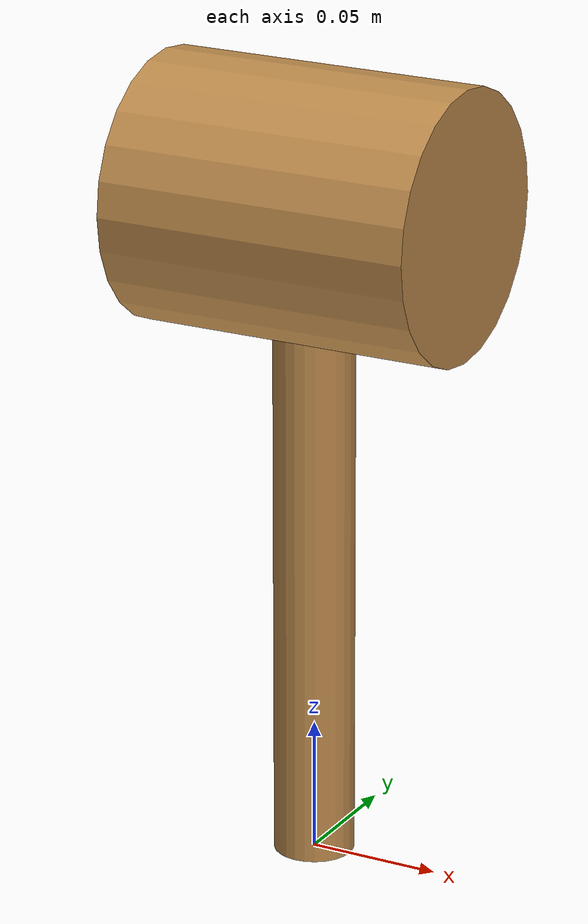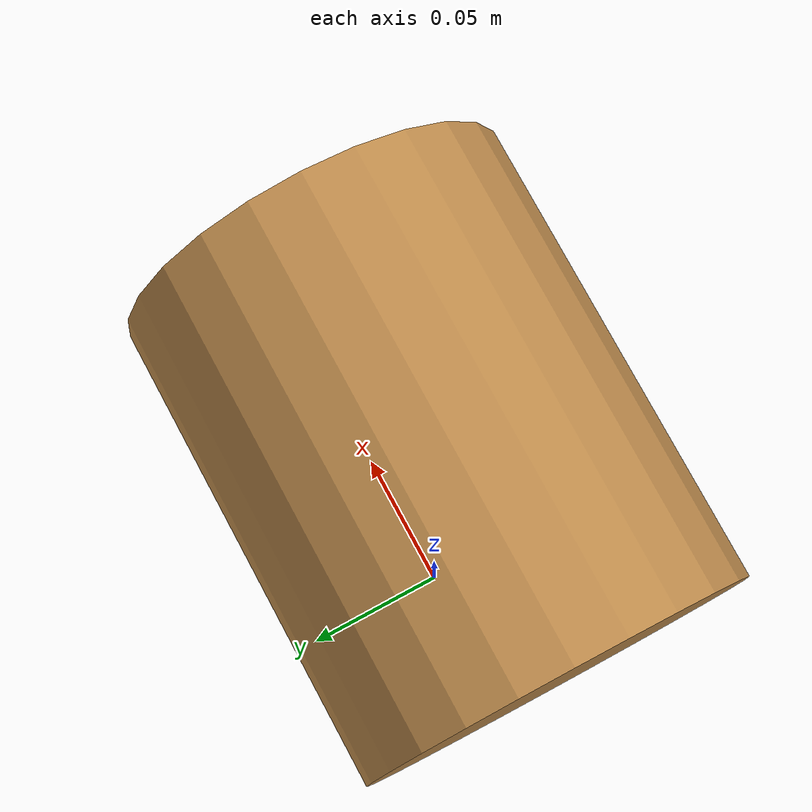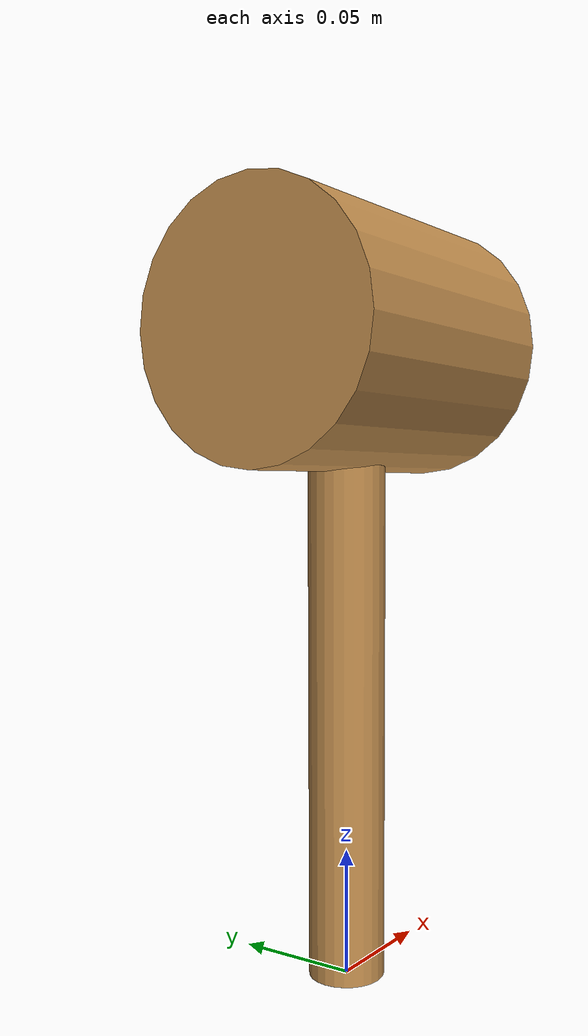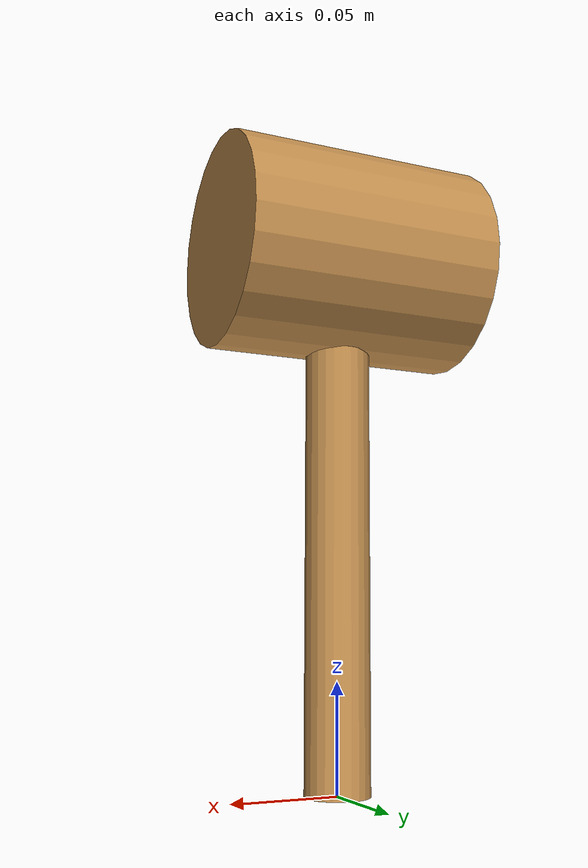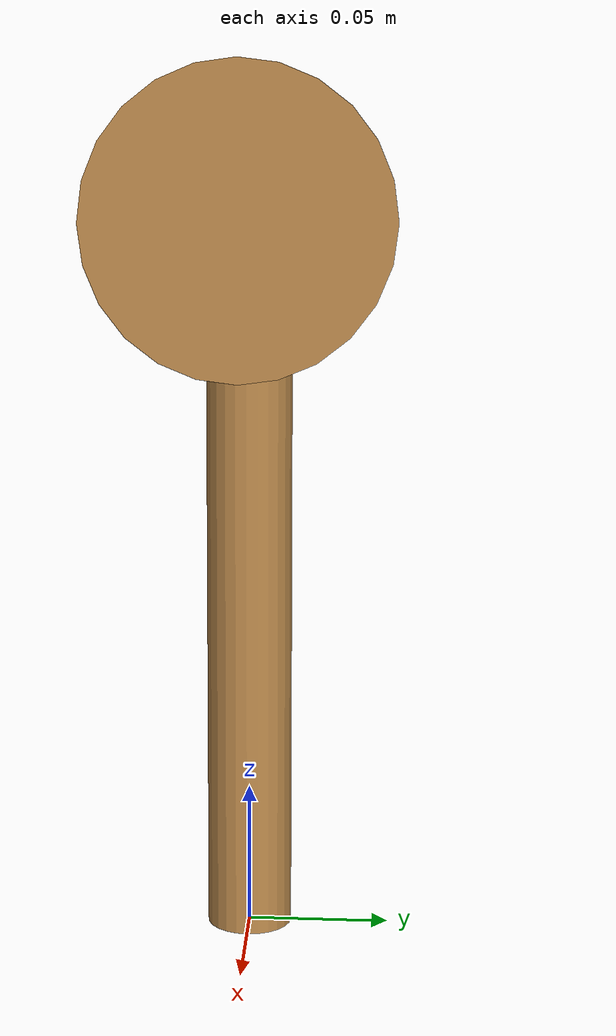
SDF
<?xml version="1.0"?>
<sdf version="1.7">
  <model name="hammer">
    <static>false</static>

    <link name="hammer_link">
        <!-- Rough inertial properties (good enough for simulation) -->
        <inertial>
            <mass>1.0</mass>
            <inertia>
                <ixx>0.01</ixx>
                <iyy>0.01</iyy>
                <izz>0.01</izz>
                <ixy>0.0</ixy>
                <ixz>0.0</ixz>
                <iyz>0.0</iyz>
            </inertia>
        </inertial>

        <!-- Handle: long thin cylinder, centered along +z -->
        <visual name="handle_visual">
            <pose>0 0 0.125 0 0 0</pose>
            <geometry>
            <cylinder>
                <radius>0.015</radius>
                <length>0.25</length>
            </cylinder>
            </geometry>
            <material>
            <ambient>0.75 0.55 0.3 1</ambient>
            <diffuse>0.75 0.55 0.3 1</diffuse>
            </material>
        </visual>

        <collision name="handle_collision">
            <pose>0 0 0.125 0 0 0</pose>
            <geometry>
            <cylinder>
                <radius>0.01</radius>
                <length>0.25</length>
            </cylinder>
            </geometry>
        </collision>

        <!-- Head: short, fat cylinder at the top of the handle -->
        <visual name="head_visual">
            <pose>0 0 0.25 0 1.5708 0</pose>
            <geometry>
            <cylinder>
                <radius>0.05</radius>
                <length>0.12</length>
            </cylinder>
            </geometry>
            <material>
            <ambient>0.75 0.55 0.3 1</ambient>
            <diffuse>0.75 0.55 0.3 1</diffuse>
            </material>
        </visual>

        <collision name="head_collision">
            <pose>0 0 0.25 0 1.5708 0</pose>
            <geometry>
            <cylinder>
                <radius>0.05</radius>
                <length>0.12</length>
            </cylinder>
            </geometry>
        </collision>
    </link>
    <!-- frame for hammer head (center of head) -->
    <frame name="hammer_head" attached_to="hammer_link">
        <pose>0 0 0.25 0 1.5708 0</pose>
    </frame>
    <frame name="hammer_face" attached_to="hammer_link">
        <pose>0.06 0 0.25 0 1.5708 0</pose>
    </frame>
  </model>
</sdf>
